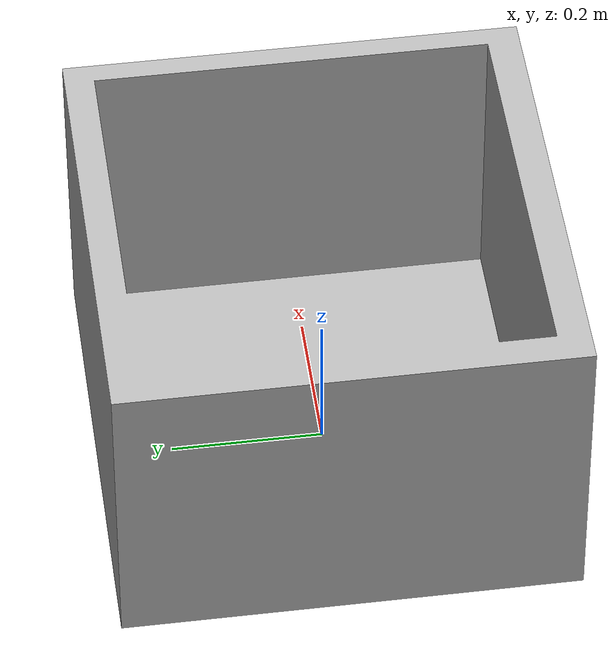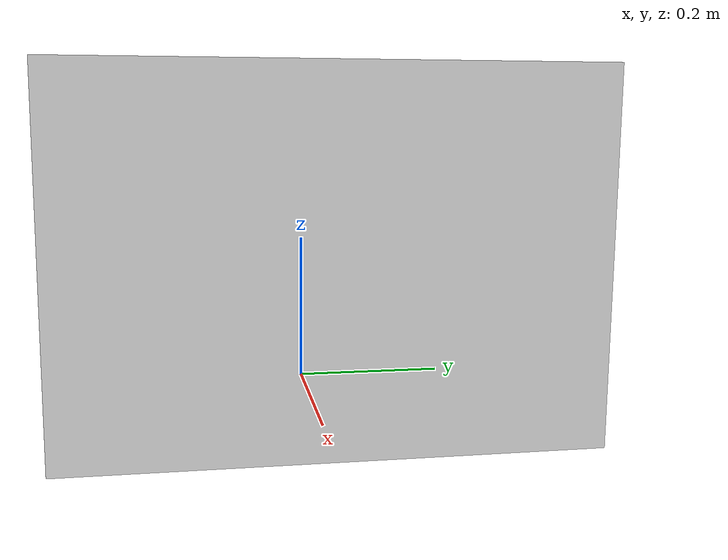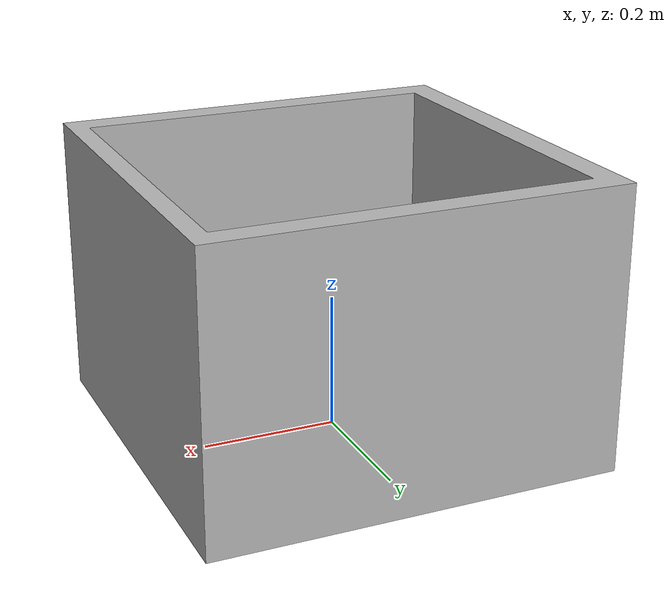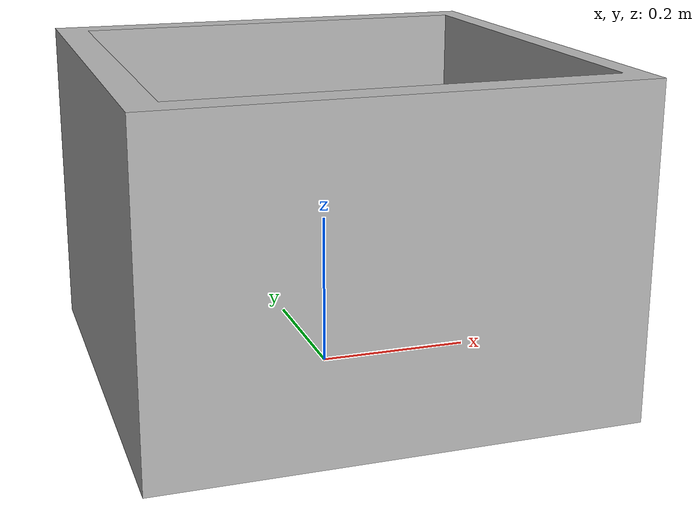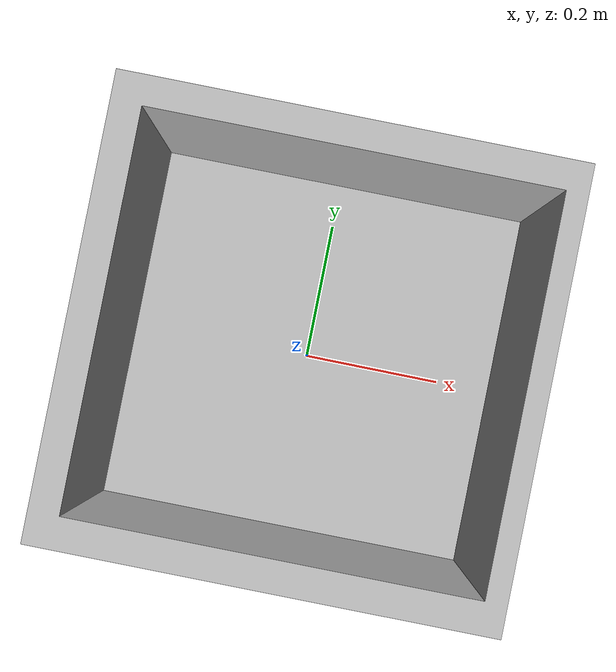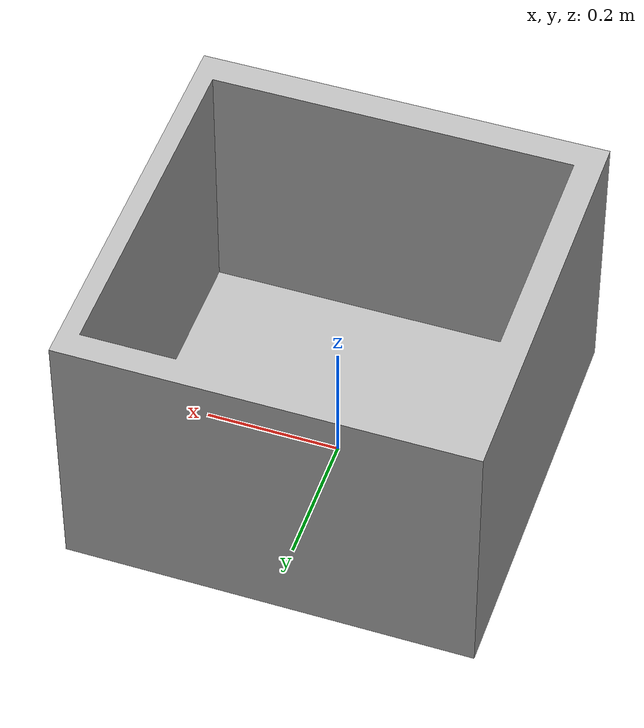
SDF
<?xml version="1.0" ?>
<sdf version="1.6">
  <model name="box2">
    <pose>0 0 0.15 0 0 0</pose>
    <link name="link">
      <inertial>
        <mass>2</mass>
        <inertia>
          <ixx>0.041666667</ixx>
          <ixy>0</ixy>
          <ixz>0</ixz>
          <iyy>0.056666667</iyy>
          <iyz>0</iyz>
          <izz>0.068333333</izz>
        </inertia>
      </inertial>
      <collision name="collision">
        <geometry>
          <box>
            <size>0.5 0.4 0.3</size>
          </box>
        </geometry>
        <surface>
          <friction>
            <ode>
              <mu>1.0</mu>
              <mu2>1.0</mu2>
            </ode>
          </friction>
          <contact>
            <ode>
              <kp>10000000.0</kp>
              <kd>1.0</kd>
              <min_depth>0.001</min_depth>
              <max_vel>0.1</max_vel>
            </ode>
          </contact>
        </surface>
      </collision>
      <visual name="visual">
        <pose>0 0 -0.15 0 0 0</pose>
        <geometry>
          <mesh>
            <uri>/home/computing/catkin_ws/src/gazebo_sensors_tutorial/models/box2/meshes/box1_v1.dae</uri>
            <scale>0.002 0.002 0.002</scale>
            <diffuse>1 0 0 0</diffuse>
          </mesh>
        </geometry>
      </visual>
    </link>
  </model>
</sdf>
